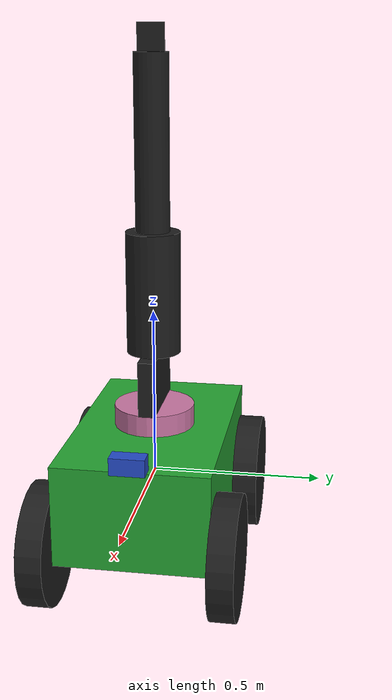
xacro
<?xml version="1.0"?>
<robot name="rover" xmlns:xacro="http://www.ros.org/wiki/xacro">
  <xacro:property name="PI" value="3.1415926535897931"/>

  <xacro:property name="chassisHeight" value="0.3"/>
  <xacro:property name="chassisLength" value="0.75"/>
  <xacro:property name="chassisWidth" value="0.45"/>
  <xacro:property name="chassisMass" value="50"/>

  <!--stick out 0.285 wheel drop = 0.12-->
  <xacro:property name="wheelWidth" value="0.075"/>
  <xacro:property name="wheelRadius" value="0.18"/>
  <xacro:property name="wheelPos" value="0.3"/>
  <xacro:property name="wheelMass" value="5"/>
  <xacro:property name="wheelDrop" value="-0.12"/>

  <xacro:property name="cameraSize" value="0.05"/>
  <xacro:property name="cameraMass" value="0.1"/>
  <xacro:property name="link_name" value="depth"/>
  <xacro:property name="frame_name" value="camera_link"/>
  <xacro:property name="camera_name" value="camera"/>

  <xacro:include filename="$(find rover_description)/urdf/rover.gazebo"/>
  <xacro:include filename="$(find rover_description)/urdf/materials.xacro"/>
  <xacro:include filename="$(find rover_description)/urdf/macros.xacro"/>
  <!--xacro:include filename="$(find rover_description)/urdf/arm.xacro"/-->

  <xacro:property name="plateLength" value="0.180"/>
  <xacro:property name="plateWidth" value="0.25"/>
  <xacro:property name="plateMass" value="0.267"/>
  <xacro:property name="plateHeight" value="0.006"/>
  <xacro:property name="baseHeight" value="0.0635"/>
  <xacro:property name="baseRadius" value="0.12"/>
  <xacro:property name="arm_link_1Length" value="0.36"/>
  <xacro:property name="arm_link_2Length" value="0.5"/>
  <xacro:property name="chassisWidth" value="0.45"/>
  <xacro:property name="baseDamping" value="1"/>
  <xacro:property name="sidePlateLenght" value="0.25"/>
  <xacro:property name="sidePlateWidth" value="0.05"/>
  <xacro:property name="sidePlateHeight" value="0.165"/>
  <xacro:property name="arm_link_1Length" value="0.36"/>
  <xacro:property name="arm_link_1Radius" value="0.08"/>
  <xacro:property name="sidePlate2arm_link_1Damping" value="1"/>
  <xacro:property name="arm_link_2Length" value="0.5"/>
  <xacro:property name="arm_link_2Radius" value="0.05"/>
  <xacro:property name="excavatorLenght" value="0.005"/>
  <xacro:property name="excavatorWidth" value="0.078"/>
  <xacro:property name="excavatorHeight" value="0.078"/>

  <link name="base_link">
    <collision>
      <origin xyz="0 0 0" rpy="0 0 0"/>
      <geometry>
        <box size="${chassisLength} ${chassisWidth} ${chassisHeight}"/>
      </geometry>
    </collision>

    <visual>
      <origin xyz="0 0 0" rpy="0 0 0"/>
      <geometry>
        <box size="${chassisLength} ${chassisWidth} ${chassisHeight}"/>
      </geometry>
      <material name="green"/>
    </visual>

  </link>

  <wheel lr="front_left" tY="1" tX="1"/>
  <wheel lr="front_right" tY="-1" tX="1"/>
  <wheel lr="back_left" tY="1" tX="-1"/>
  <wheel lr="back_right" tY="-1" tX="-1"/>

  <joint name="camera_joint" type="fixed">
    <axis xyz="0 0 0"/>
    <parent link="base_link"/>
    <child link="camera_link"/>
    <origin xyz="${chassisLength/2} 0 ${chassisHeight/2}" rpy="0 0 0"/>
  </joint>

  <link name="camera_link">
    <collision>
      <origin xyz="0 0 0.025" rpy="0 0 0"/>
      <geometry>
        <box size="0.05 0.1 0.05"/>
      </geometry>
    </collision>
    <visual>
      <origin xyz="0 0 0.025" rpy="0 0 0"/>
      <geometry>
        <box size="0.05 0.1 0.05"/>
      </geometry>
      <material name="blue"/>
    </visual>
    <inertial>
      <mass value="1e-5"/>
      <origin xyz="0 0 0.025" rpy="0 0 0"/>
      <inertia ixx="1e-6" ixy="1e-6" ixz="1e-6" iyy="1e-6" iyz="1e-6" izz="1e-6"/>
    </inertial>
  </link>

  <joint name="arm_joint_0" type="revolute">
    <axis xyz="0 0 1"/>
    <parent link="base_link"/>
    <child link="arm_base_link"/>
    <limit lower="-2" upper="2" effort="1" velocity="2"/>
    <origin xyz="0 0 ${chassisHeight/2}" rpy="0 0 0"/>
  </joint>

  <link name="arm_base_link">
    <visual>
      <origin xyz="0 0 ${baseHeight/2}" rpy="0 0 0"/>
      <geometry>
        <cylinder length="${baseHeight}" radius="${baseRadius}"/>
      </geometry>
    </visual>

    <inertial>
      <mass value="${wheelMass}"/>
      <origin xyz="0 0 ${baseHeight/2}" rpy="0 0 0"/>
      <cylinder_inertia m="${wheelMass}" r="${wheelRadius}" h="${wheelWidth}"/>

    </inertial>

    <collision>
      <origin xyz="0 0 ${baseHeight/2}" rpy="0 0 0"/>
      <geometry>
        <cylinder length="${baseHeight}" radius="${baseRadius}"/>
      </geometry>
    </collision>
  </link>

  <transmission name="arm_joint_0_trans">
    <type>transmission_interface/SimpleTransmission</type>
    <joint name="arm_joint_0">
      <hardwareInterface>PositionJointInterface</hardwareInterface>
    </joint>
    <actuator name="arm_joint_0_Motor">
      <hardwareInterface>EffortJointInterface</hardwareInterface>
      <mechanicalReduction>10</mechanicalReduction>
    </actuator>
  </transmission>

  <joint name="joint_base_side_plate" type="fixed">
    <parent link="arm_base_link"/>
    <child link="side_plate"/>
    <origin xyz="0 0 ${baseHeight}" rpy="0 0 0"/>
  </joint>

  <link name="side_plate">
    <inertial>
      <origin xyz="0 0 0" rpy="0 0 0"/>
      <mass value="0.130"/>
      <!--box_inertia m="0.130" x="${sidePlateLenght}" y="${sidePlateWidth}" z="${sidePlateHeight}"/-->
      <box_inertia m="0.130" x="${sidePlateLenght}" y="${sidePlateWidth}" z="${sidePlateHeight}"/>
    </inertial>
    <visual>
      <origin xyz="0 0 ${sidePlateHeight/2}" rpy="0 0 0"/>
      <geometry>
        <box size="${sidePlateLenght} ${sidePlateWidth} ${sidePlateHeight}"/>
      </geometry>
      <material name="black"/>
    </visual>
    <collision>
      <origin xyz="0 0 ${sidePlateHeight/2}" rpy="0 0 0"/>
      <geometry>
        <box size="${sidePlateLenght} ${sidePlateWidth} ${sidePlateHeight}"/>
      </geometry>
    </collision>
  </link>

  <transmission name="joint_base_side_plate_trans">
    <type>transmission_interface/SimpleTransmission</type>
    <joint name="joint_base_side_plate">
      <hardwareInterface>PositionJointInterface</hardwareInterface>
    </joint>
    <actuator name="arm_joint_0_Motor">
      <hardwareInterface>EffortJointInterface</hardwareInterface>
      <mechanicalReduction>10</mechanicalReduction>
    </actuator>
  </transmission>

  <joint name="arm_joint_1" type="revolute">
    <parent link="side_plate"/>
    <child link="arm_link_1"/>
    <axis xyz=" 0 1 0"/>
    <origin xyz="0 0  ${sidePlateHeight}" rpy="0 0 0"/>
    <dynamics damping="${sidePlate2arm_link_1Damping}"/>
    <limit effort="100.0" velocity="0.5" lower="-1.571" upper="1.571"/>
  </joint>

  <link name="arm_link_1">
    <visual>
      <origin xyz="0 0 ${arm_link_1Length/2}" rpy="0 0 0"/>
      <material name="black"/>
      <geometry>
        <cylinder length="${arm_link_1Length}" radius="${arm_link_1Radius}"/>
      </geometry>
    </visual>
    <collision>
      <origin xyz="0 0 ${arm_link_1Length/2}" rpy="0 0 0"/>
      <geometry>
        <cylinder length="${arm_link_1Length}" radius="${arm_link_1Radius}"/>
      </geometry>
    </collision>
    <inertial>
      <origin xyz="0.416 0 0.154" rpy="0 0 0"/>
      <mass value="2"/>
      <cylinder_inertia m="2" r="${arm_link_1Radius}" h="${arm_link_1Length}"/>
    </inertial>
  </link>

  <transmission name="arm_link_1_trans">
    <type>transmission_interface/SimpleTransmission</type>
    <joint name="arm_link_1">
      <hardwareInterface>PositionJointInterface</hardwareInterface>
    </joint>
    <actuator name="arm_link_1_Motor">
      <hardwareInterface>EffortJointInterface</hardwareInterface>
      <mechanicalReduction>10</mechanicalReduction>
    </actuator>
  </transmission>

  <joint name="arm_joint_2" type="revolute">
    <parent link="arm_link_1"/>
    <child link="arm_link_2"/>
    <axis xyz=" 0 1 0"/>
    <origin xyz="0 0 ${arm_link_1Length}" rpy="0 0 0"/>
    <dynamics damping="${sidePlate2arm_link_1Damping}"/>
    <limit effort="100.0" velocity="0.5" lower="-1.571" upper="1.571"/>
  </joint>

  <link name="arm_link_2">
    <visual>
      <origin xyz="0 0 ${arm_link_2Length/2}" rpy="0 0 0"/>
      <material name="black"/>
      <geometry>
        <cylinder length="${arm_link_2Length}" radius="${arm_link_2Radius}"/>
      </geometry>
    </visual>
    <collision>
      <origin xyz="0 0 ${arm_link_2Length/2}" rpy="0 0 0"/>
      <geometry>
        <cylinder length="${arm_link_2Length}" radius="${arm_link_2Radius}"/>
      </geometry>
    </collision>
    <inertial>
      <origin xyz="0.5 0 0.5" rpy="0 0 0"/>
      <mass value="1"/>
      <cylinder_inertia m="1" r="${arm_link_2Radius}" h="${arm_link_2Length}"/>
    </inertial>
  </link>

  <transmission name="arm_link_2_trans">
    <type>transmission_interface/SimpleTransmission</type>
    <joint name="arm_link_2">
      <hardwareInterface>PositionJointInterface</hardwareInterface>
    </joint>
    <actuator name="arm_link_2_Motor">
      <hardwareInterface>EffortJointInterface</hardwareInterface>
      <mechanicalReduction>10</mechanicalReduction>
    </actuator>
  </transmission>

  <joint name="arm_joint_3" type="revolute">
    <parent link="arm_link_2"/>
    <child link="end_effector"/>
    <axis xyz=" 0 1 0"/>
    <origin xyz="0 0 ${arm_link_2Length}" rpy="0 0 0"/>
    <dynamics damping="${sidePlate2arm_link_1Damping}"/>
    <limit effort="100.0" velocity="0.5" lower="-1.571" upper="1.571"/>
  </joint>

  <link name="end_effector">
    <inertial>
      <origin xyz="0 0 1.0945" rpy="0 0 0"/>
      <mass value="0.1"/>
      <box_inertia m="0.1" x="${excavatorLenght}" y="${excavatorWidth}" z="${excavatorHeight}"/>
    </inertial>
    <visual>
      <origin xyz="0 0 ${excavatorHeight/2}" rpy="0 0 0"/>
      <geometry>
        <box size="${excavatorLenght} ${excavatorWidth} ${excavatorHeight}"/>
      </geometry>
      <material name="black"/>
    </visual>
    <collision>
      <origin xyz="0 0 ${excavatorHeight/2}" rpy="0 0 0"/>
      <geometry>
        <box size="${excavatorLenght} ${excavatorWidth} ${excavatorHeight}"/>
      </geometry>
    </collision>
  </link>

  <transmission name="arm_link_3_trans">
    <type>transmission_interface/SimpleTransmission</type>
    <joint name="arm_link_3">
      <hardwareInterface>PositionJointInterface</hardwareInterface>
    </joint>
    <actuator name="arm_link_3_Motor">
      <hardwareInterface>EffortJointInterface</hardwareInterface>
      <mechanicalReduction>10</mechanicalReduction>
    </actuator>
  </transmission>

</robot>

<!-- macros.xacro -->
<robot>

  <macro name="wheel" params="lr tY tX">
    <joint name="${lr}_wheel_joint" type="continuous">
      <parent link="base_link"/>
      <child link="${lr}_wheel"/>
      <origin xyz="${(wheelPos*tX)} ${tY*wheelWidth/2+tY*chassisWidth/2} ${wheelDrop}" rpy="0 0 0"/>
      <axis xyz="0 1 0" rpy="0 0 0"/>
    </joint>

    <link name="${lr}_wheel">
      <visual>
        <origin xyz="0 0 0" rpy="0 ${PI/2} ${PI/2}"/>
        <geometry>
          <cylinder length="${wheelWidth}" radius="${wheelRadius}"/>
        </geometry>
        <material name="black"/>
      </visual>

      <collision>
        <origin xyz="0 0 0" rpy="0 ${PI/2} ${PI/2}"/>
        <geometry>
          <cylinder length="${wheelWidth}" radius="${wheelRadius}"/>
        </geometry>
      </collision>

      <inertial>
        <origin xyz="0 0 0" rpy="0 ${PI/2} ${PI/2}"/>
        <mass value="${wheelMass}"/>
        <cylinder_inertia m="${wheelMass}" r="${wheelRadius}" h="${wheelWidth}"/>
      </inertial>
    </link>

    <gazebo reference="${lr}_wheel">
      <mu1 value="1.0"/>
      <mu2 value="1.0"/>
      <kp value="10000000.0"/>
      <kd value="1.0"/>
      <fdir1 value="1 0 0"/>
      <material>Gazebo/Black</material>
    </gazebo>

    <transmission name="${lr}_trans">
      <type>transmission_interface/SimpleTransmission</type>
      <joint name="${lr}_wheel_joint">
        <hardwareInterface>PositionJointInterface</hardwareInterface>
      </joint>
      <actuator name="${lr}Motor">
        <hardwareInterface>EffortJointInterface</hardwareInterface>
        <mechanicalReduction>10</mechanicalReduction>
      </actuator>
    </transmission>
  </macro>

  <macro name="cylinder_inertia" params="m r h">
    <inertia ixx="${m*(3*r*r+h*h)/12}" ixy="0" ixz="0" iyy="${m*(3*r*r+h*h)/12}" iyz="0" izz="${m*r*r/2}"/>
  </macro>

  <macro name="box_inertia" params="m x y z">
    <inertia ixx="${m*(y*y+z*z)/12}" ixy="0" ixz="0" iyy="${m*(x*x+z*z)/12}" iyz="0" izz="${m*(x*x+z*z)/12}"/>
  </macro>

  <macro name="sphere_inertia" params="m r">
    <inertia ixx="${2*m*r*r/5}" ixy="0" ixz="0" iyy="${2*m*r*r/5}" iyz="0" izz="${2*m*r*r/5}"/>
  </macro>

</robot>
